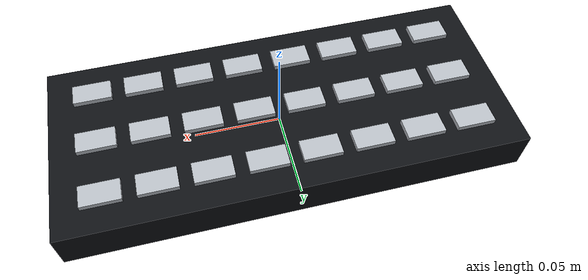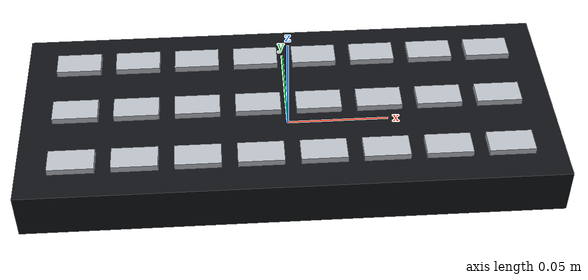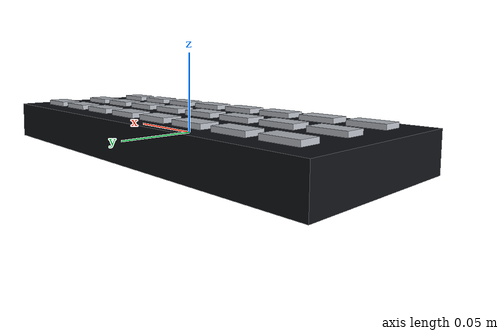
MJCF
<mujoco model="vla82_vla82_052">
  <compiler angle="radian"/>
  <asset>
    <texture name="source_texture" type="2d" file="source_texture.png"/>
    <material name="source_material" texture="source_texture" rgba="1 1 1 1"/>
  </asset>
  <default>
    <default class="visual"><geom contype="0" conaffinity="0" group="1"/></default>
    <default class="collision"><geom contype="1" conaffinity="1" group="0" density="300" friction="0.55 0.005 0.0002" solref="0.02 1" solimp="0.9 0.95 0.001"/></default>
    <default class="region"><geom contype="0" conaffinity="0" group="1" rgba="0 1 0 0" mass="0"/></default>
  </default>
  <worldbody><body><body name="object">
    <geom name="keyboard_base" class="visual" type="box" size="0.130000 0.055000 0.012000" rgba="0.055 0.065 0.080 1"/>
    <geom name="keyboard_key_0_0" class="visual" type="box" pos="-0.104000 -0.034100 0.013500" size="0.011050 0.006325 0.0015" rgba="0.72 0.74 0.77 1"/>
    <geom name="keyboard_key_0_1" class="visual" type="box" pos="-0.074286 -0.034100 0.013500" size="0.011050 0.006325 0.0015" rgba="0.72 0.74 0.77 1"/>
    <geom name="keyboard_key_0_2" class="visual" type="box" pos="-0.044571 -0.034100 0.013500" size="0.011050 0.006325 0.0015" rgba="0.72 0.74 0.77 1"/>
    <geom name="keyboard_key_0_3" class="visual" type="box" pos="-0.014857 -0.034100 0.013500" size="0.011050 0.006325 0.0015" rgba="0.72 0.74 0.77 1"/>
    <geom name="keyboard_key_0_4" class="visual" type="box" pos="0.014857 -0.034100 0.013500" size="0.011050 0.006325 0.0015" rgba="0.72 0.74 0.77 1"/>
    <geom name="keyboard_key_0_5" class="visual" type="box" pos="0.044571 -0.034100 0.013500" size="0.011050 0.006325 0.0015" rgba="0.72 0.74 0.77 1"/>
    <geom name="keyboard_key_0_6" class="visual" type="box" pos="0.074286 -0.034100 0.013500" size="0.011050 0.006325 0.0015" rgba="0.72 0.74 0.77 1"/>
    <geom name="keyboard_key_0_7" class="visual" type="box" pos="0.104000 -0.034100 0.013500" size="0.011050 0.006325 0.0015" rgba="0.72 0.74 0.77 1"/>
    <geom name="keyboard_key_1_0" class="visual" type="box" pos="-0.104000 0.000000 0.013500" size="0.011050 0.006325 0.0015" rgba="0.72 0.74 0.77 1"/>
    <geom name="keyboard_key_1_1" class="visual" type="box" pos="-0.074286 0.000000 0.013500" size="0.011050 0.006325 0.0015" rgba="0.72 0.74 0.77 1"/>
    <geom name="keyboard_key_1_2" class="visual" type="box" pos="-0.044571 0.000000 0.013500" size="0.011050 0.006325 0.0015" rgba="0.72 0.74 0.77 1"/>
    <geom name="keyboard_key_1_3" class="visual" type="box" pos="-0.014857 0.000000 0.013500" size="0.011050 0.006325 0.0015" rgba="0.72 0.74 0.77 1"/>
    <geom name="keyboard_key_1_4" class="visual" type="box" pos="0.014857 0.000000 0.013500" size="0.011050 0.006325 0.0015" rgba="0.72 0.74 0.77 1"/>
    <geom name="keyboard_key_1_5" class="visual" type="box" pos="0.044571 0.000000 0.013500" size="0.011050 0.006325 0.0015" rgba="0.72 0.74 0.77 1"/>
    <geom name="keyboard_key_1_6" class="visual" type="box" pos="0.074286 0.000000 0.013500" size="0.011050 0.006325 0.0015" rgba="0.72 0.74 0.77 1"/>
    <geom name="keyboard_key_1_7" class="visual" type="box" pos="0.104000 0.000000 0.013500" size="0.011050 0.006325 0.0015" rgba="0.72 0.74 0.77 1"/>
    <geom name="keyboard_key_2_0" class="visual" type="box" pos="-0.104000 0.034100 0.013500" size="0.011050 0.006325 0.0015" rgba="0.72 0.74 0.77 1"/>
    <geom name="keyboard_key_2_1" class="visual" type="box" pos="-0.074286 0.034100 0.013500" size="0.011050 0.006325 0.0015" rgba="0.72 0.74 0.77 1"/>
    <geom name="keyboard_key_2_2" class="visual" type="box" pos="-0.044571 0.034100 0.013500" size="0.011050 0.006325 0.0015" rgba="0.72 0.74 0.77 1"/>
    <geom name="keyboard_key_2_3" class="visual" type="box" pos="-0.014857 0.034100 0.013500" size="0.011050 0.006325 0.0015" rgba="0.72 0.74 0.77 1"/>
    <geom name="keyboard_key_2_4" class="visual" type="box" pos="0.014857 0.034100 0.013500" size="0.011050 0.006325 0.0015" rgba="0.72 0.74 0.77 1"/>
    <geom name="keyboard_key_2_5" class="visual" type="box" pos="0.044571 0.034100 0.013500" size="0.011050 0.006325 0.0015" rgba="0.72 0.74 0.77 1"/>
    <geom name="keyboard_key_2_6" class="visual" type="box" pos="0.074286 0.034100 0.013500" size="0.011050 0.006325 0.0015" rgba="0.72 0.74 0.77 1"/>
    <geom name="keyboard_key_2_7" class="visual" type="box" pos="0.104000 0.034100 0.013500" size="0.011050 0.006325 0.0015" rgba="0.72 0.74 0.77 1"/>
    <geom name="collision" class="collision" type="box" size="0.130000 0.055000 0.012000"/>
    <geom name="reg_bbox" class="region" type="box" pos="0 0 0" size="0.130000 0.055000 0.015000"/>
  </body></body></worldbody>
  <actuator/>
</mujoco>
